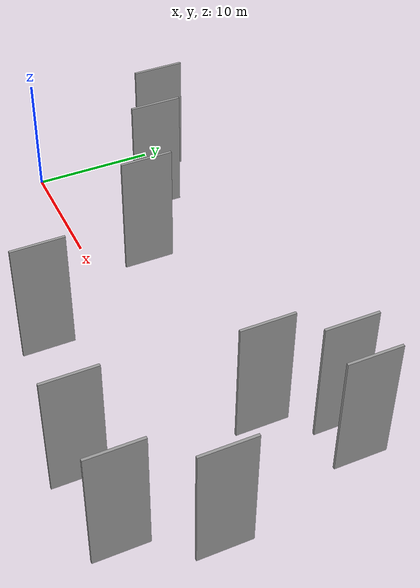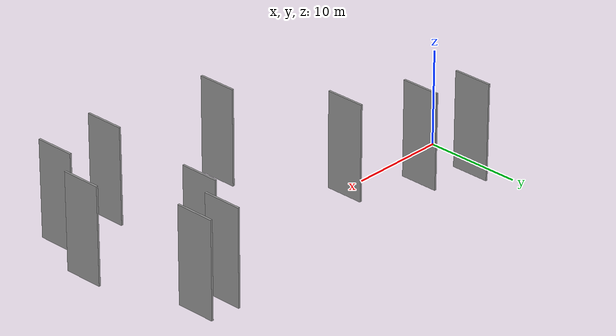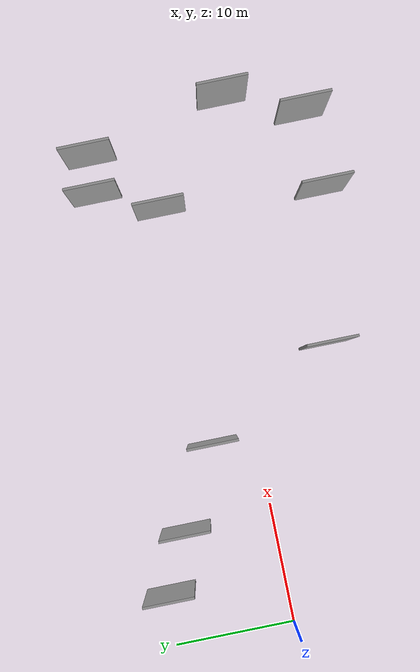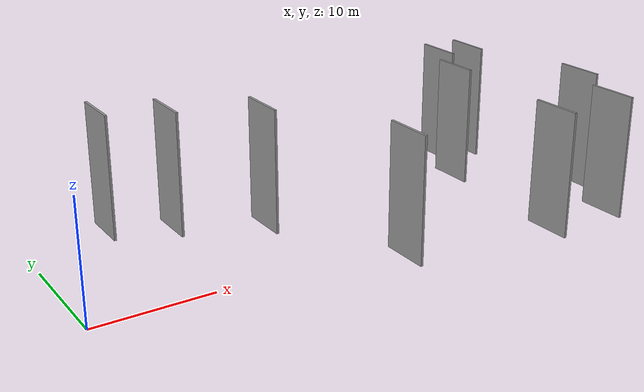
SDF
<sdf version="1.6">
 <world name="default">
  <scene>
   <sky><clouds><speed>12</speed></clouds></sky>
   <ambient>0.4 0.4 0.4 1</ambient>
   <background>0.7 0.7 0.7 1</background>
   <shadows>1</shadows>
  </scene>
  <gravity>0 0 -9.8066</gravity>
  <magnetic_field>6e-06 2.3e-05 -4.2e-05</magnetic_field>
  <physics default="0" name="default_physics" type="ode">
   <ode>
    <solver>
     <type>quick</type>
     <iters>10</iters>
     <sor>1.0</sor>
     <use_dynamic_moi_rescaling>0</use_dynamic_moi_rescaling>
    </solver>
    <constraints>
     <cfm>0</cfm>
     <erp>0.2</erp>
     <contact_max_correcting_vel>100</contact_max_correcting_vel>
     <contact_surface_layer>0.001</contact_surface_layer>
    </constraints>
   </ode>
   <max_step_size>0.004</max_step_size>
   <real_time_factor>1</real_time_factor>
   <real_time_update_rate>250</real_time_update_rate>
  </physics>
  <light name="sun" type="directional">
   <pose>0 0 10 0 0 0</pose>
   <diffuse>0.8 0.8 0.8 1</diffuse>
   <specular>0.2 0.2 0.2 1</specular>
   <attenuation>
    <range>1000</range>
    <constant>0.9</constant>
    <linear>0.01</linear>
    <quadratic>0.001</quadratic>
   </attenuation>
   <direction>-0.5 0.1 -0.9</direction>
  </light>
  <model name="grey_wall_1">
   <static>1</static>
   <pose>5.2642 9.2832 2.5 0.000000 0.000000 1.570796</pose>
   <link name="link">
    <pose>0 0 5.00 0 0 0</pose>
    <collision name="collision"><geometry><box><size>4.00 0.2 10.00</size></box></geometry></collision>
    <visual name="visual">
     <cast_shadows>0</cast_shadows>
     <geometry><box><size>4.00 0.2 10.00</size></box></geometry>
     <material>
      <script>
       <uri>model://grey_wall/materials/scripts</uri>
       <uri>model://grey_wall/materials/textures</uri>
       <name>vrc/grey_wall</name>
      </script>
     </material>
    </visual>
   </link>
  </model>
  <model name="grey_wall_2">
   <static>1</static>
   <pose>9.8735 7.0980 2.5 0.000000 0.000000 1.570796</pose>
   <link name="link">
    <pose>0 0 5.00 0 0 0</pose>
    <collision name="collision"><geometry><box><size>4.00 0.2 10.00</size></box></geometry></collision>
    <visual name="visual">
     <cast_shadows>0</cast_shadows>
     <geometry><box><size>4.00 0.2 10.00</size></box></geometry>
     <material>
      <script>
       <uri>model://grey_wall/materials/scripts</uri>
       <uri>model://grey_wall/materials/textures</uri>
       <name>vrc/grey_wall</name>
      </script>
     </material>
    </visual>
   </link>
  </model>
  <model name="grey_wall_3">
   <static>1</static>
   <pose>16.2138 3.6596 2.5 0.000000 0.000000 1.570796</pose>
   <link name="link">
    <pose>0 0 5.00 0 0 0</pose>
    <collision name="collision"><geometry><box><size>4.00 0.2 10.00</size></box></geometry></collision>
    <visual name="visual">
     <cast_shadows>0</cast_shadows>
     <geometry><box><size>4.00 0.2 10.00</size></box></geometry>
     <material>
      <script>
       <uri>model://grey_wall/materials/scripts</uri>
       <uri>model://grey_wall/materials/textures</uri>
       <name>vrc/grey_wall</name>
      </script>
     </material>
    </visual>
   </link>
  </model>
  <model name="grey_wall_4">
   <static>1</static>
   <pose>40.5944 -8.5108 2.5 0.000000 0.000000 1.570796</pose>
   <link name="link">
    <pose>0 0 5.00 0 0 0</pose>
    <collision name="collision"><geometry><box><size>4.00 0.2 10.00</size></box></geometry></collision>
    <visual name="visual">
     <cast_shadows>0</cast_shadows>
     <geometry><box><size>4.00 0.2 10.00</size></box></geometry>
     <material>
      <script>
       <uri>model://grey_wall/materials/scripts</uri>
       <uri>model://grey_wall/materials/textures</uri>
       <name>vrc/grey_wall</name>
      </script>
     </material>
    </visual>
   </link>
  </model>
  <model name="grey_wall_5">
   <static>1</static>
   <pose>40.3821 8.6948 2.5 0.000000 0.000000 1.570796</pose>
   <link name="link">
    <pose>0 0 5.00 0 0 0</pose>
    <collision name="collision"><geometry><box><size>4.00 0.2 10.00</size></box></geometry></collision>
    <visual name="visual">
     <cast_shadows>0</cast_shadows>
     <geometry><box><size>4.00 0.2 10.00</size></box></geometry>
     <material>
      <script>
       <uri>model://grey_wall/materials/scripts</uri>
       <uri>model://grey_wall/materials/textures</uri>
       <name>vrc/grey_wall</name>
      </script>
     </material>
    </visual>
   </link>
  </model>
  <model name="grey_wall_6">
   <static>1</static>
   <pose>35.1436 4.0201 2.5 0.000000 0.000000 1.570796</pose>
   <link name="link">
    <pose>0 0 5.00 0 0 0</pose>
    <collision name="collision"><geometry><box><size>4.00 0.2 10.00</size></box></geometry></collision>
    <visual name="visual">
     <cast_shadows>0</cast_shadows>
     <geometry><box><size>4.00 0.2 10.00</size></box></geometry>
     <material>
      <script>
       <uri>model://grey_wall/materials/scripts</uri>
       <uri>model://grey_wall/materials/textures</uri>
       <name>vrc/grey_wall</name>
      </script>
     </material>
    </visual>
   </link>
  </model>
  <model name="grey_wall_7">
   <static>1</static>
   <pose>43.0626 -2.5671 2.5 0.000000 0.000000 1.570796</pose>
   <link name="link">
    <pose>0 0 5.00 0 0 0</pose>
    <collision name="collision"><geometry><box><size>4.00 0.2 10.00</size></box></geometry></collision>
    <visual name="visual">
     <cast_shadows>0</cast_shadows>
     <geometry><box><size>4.00 0.2 10.00</size></box></geometry>
     <material>
      <script>
       <uri>model://grey_wall/materials/scripts</uri>
       <uri>model://grey_wall/materials/textures</uri>
       <name>vrc/grey_wall</name>
      </script>
     </material>
    </visual>
   </link>
  </model>
  <model name="grey_wall_8">
   <static>1</static>
   <pose>22.0951 -6.7826 2.5 0.000000 0.000000 1.570796</pose>
   <link name="link">
    <pose>0 0 5.00 0 0 0</pose>
    <collision name="collision"><geometry><box><size>4.00 0.2 10.00</size></box></geometry></collision>
    <visual name="visual">
     <cast_shadows>0</cast_shadows>
     <geometry><box><size>4.00 0.2 10.00</size></box></geometry>
     <material>
      <script>
       <uri>model://grey_wall/materials/scripts</uri>
       <uri>model://grey_wall/materials/textures</uri>
       <name>vrc/grey_wall</name>
      </script>
     </material>
    </visual>
   </link>
  </model>
  <model name="grey_wall_9">
   <static>1</static>
   <pose>37.2661 8.8808 2.5 0.000000 0.000000 1.570796</pose>
   <link name="link">
    <pose>0 0 5.00 0 0 0</pose>
    <collision name="collision"><geometry><box><size>4.00 0.2 10.00</size></box></geometry></collision>
    <visual name="visual">
     <cast_shadows>0</cast_shadows>
     <geometry><box><size>4.00 0.2 10.00</size></box></geometry>
     <material>
      <script>
       <uri>model://grey_wall/materials/scripts</uri>
       <uri>model://grey_wall/materials/textures</uri>
       <name>vrc/grey_wall</name>
      </script>
     </material>
    </visual>
   </link>
  </model>
  <model name="grey_wall_10">
   <static>1</static>
   <pose>34.2279 -8.9026 2.5 0.000000 0.000000 1.570796</pose>
   <link name="link">
    <pose>0 0 5.00 0 0 0</pose>
    <collision name="collision"><geometry><box><size>4.00 0.2 10.00</size></box></geometry></collision>
    <visual name="visual">
     <cast_shadows>0</cast_shadows>
     <geometry><box><size>4.00 0.2 10.00</size></box></geometry>
     <material>
      <script>
       <uri>model://grey_wall/materials/scripts</uri>
       <uri>model://grey_wall/materials/textures</uri>
       <name>vrc/grey_wall</name>
      </script>
     </material>
    </visual>
   </link>
  </model>
 </world>
</sdf>
